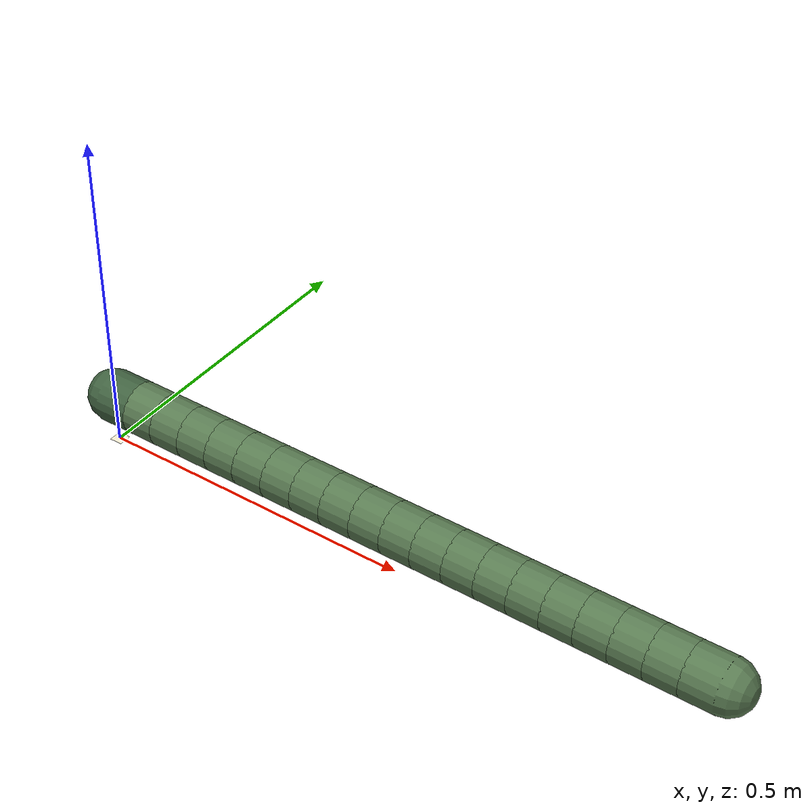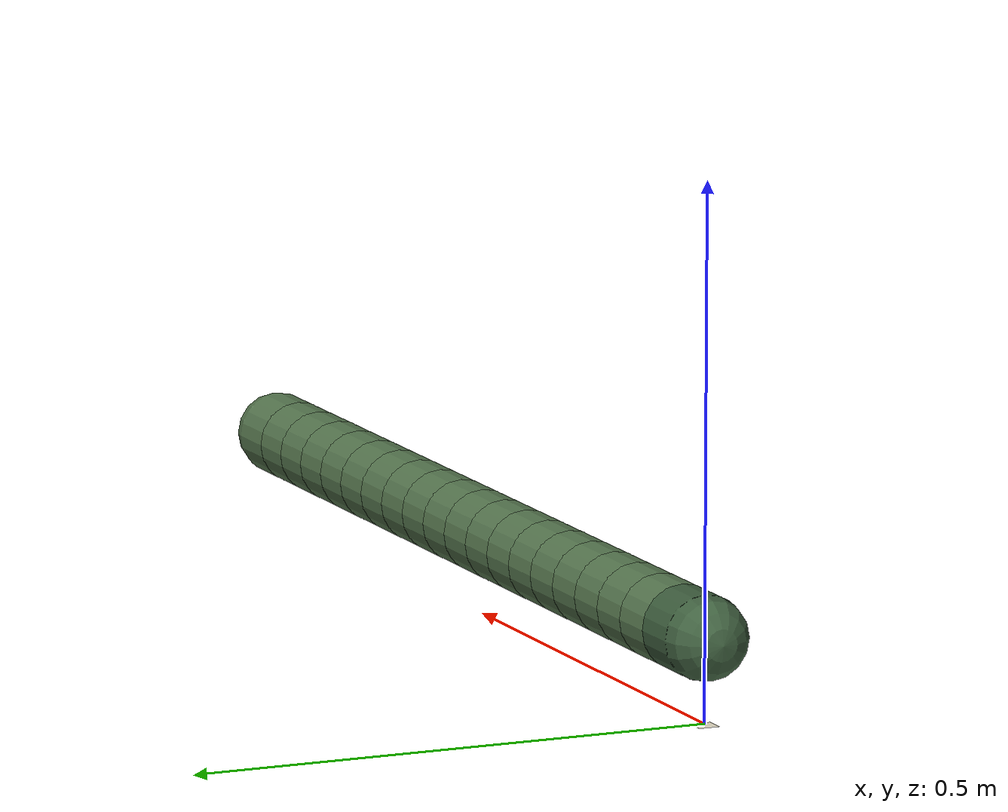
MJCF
<!-- Generated by scripts/build_wormbody.py. Edit the script, not this file. -->
<mujoco model="c_elegans_wormbody">
  <compiler angle="radian" autolimits="true"/>
  <option timestep="0.0005" integrator="implicitfast" viscosity="1.0e-3" density="1000"/>
  <visual>
    <headlight diffuse="0.8 0.8 0.8" ambient="0.3 0.3 0.3" specular="0.2 0.2 0.2"/>
    <global offwidth="1200" offheight="800"/>
  </visual>
  <default>
    <joint damping="0.5" stiffness="0.0" limited="true" range="-0.5 0.5"/>
    <geom density="1000" friction="0.5 0.1 0.01"/>
    <position ctrllimited="true" ctrlrange="-0.5 0.5" kp="60.0" kv="2.0"/>
  </default>
  <worldbody>
    <geom name="substrate" type="plane" size="0.01 0.01 0.001" rgba="0.95 0.92 0.82 1"/>
    <light name="overhead" pos="0 0 0.02" dir="0 0 -1" diffuse="0.8 0.8 0.8"/>
    <body name="segment_0" pos="0 0 0.0800000" euler="0 0 0">
      <freejoint name="root"/>
      <geom name="geom_0" type="capsule" fromto="0 0 0 0.0500000 0 0" size="0.0400000" rgba="0.25 0.38 0.25 1"/>
        <body name="segment_1" pos="0.0500000 0 0">
          <joint name="hinge_1" type="hinge" axis="0 0 1"/>
          <geom name="geom_1" type="capsule" fromto="0 0 0 0.0500000 0 0" size="0.0400000" rgba="0.35 0.48 0.32 1"/>
          <body name="segment_2" pos="0.0500000 0 0">
            <joint name="hinge_2" type="hinge" axis="0 0 1"/>
            <geom name="geom_2" type="capsule" fromto="0 0 0 0.0500000 0 0" size="0.0400000" rgba="0.35 0.48 0.32 1"/>
            <body name="segment_3" pos="0.0500000 0 0">
              <joint name="hinge_3" type="hinge" axis="0 0 1"/>
              <geom name="geom_3" type="capsule" fromto="0 0 0 0.0500000 0 0" size="0.0400000" rgba="0.35 0.48 0.32 1"/>
              <body name="segment_4" pos="0.0500000 0 0">
                <joint name="hinge_4" type="hinge" axis="0 0 1"/>
                <geom name="geom_4" type="capsule" fromto="0 0 0 0.0500000 0 0" size="0.0400000" rgba="0.35 0.48 0.32 1"/>
                <body name="segment_5" pos="0.0500000 0 0">
                  <joint name="hinge_5" type="hinge" axis="0 0 1"/>
                  <geom name="geom_5" type="capsule" fromto="0 0 0 0.0500000 0 0" size="0.0400000" rgba="0.35 0.48 0.32 1"/>
                  <body name="segment_6" pos="0.0500000 0 0">
                    <joint name="hinge_6" type="hinge" axis="0 0 1"/>
                    <geom name="geom_6" type="capsule" fromto="0 0 0 0.0500000 0 0" size="0.0400000" rgba="0.35 0.48 0.32 1"/>
                    <body name="segment_7" pos="0.0500000 0 0">
                      <joint name="hinge_7" type="hinge" axis="0 0 1"/>
                      <geom name="geom_7" type="capsule" fromto="0 0 0 0.0500000 0 0" size="0.0400000" rgba="0.35 0.48 0.32 1"/>
                      <body name="segment_8" pos="0.0500000 0 0">
                        <joint name="hinge_8" type="hinge" axis="0 0 1"/>
                        <geom name="geom_8" type="capsule" fromto="0 0 0 0.0500000 0 0" size="0.0400000" rgba="0.35 0.48 0.32 1"/>
                        <body name="segment_9" pos="0.0500000 0 0">
                          <joint name="hinge_9" type="hinge" axis="0 0 1"/>
                          <geom name="geom_9" type="capsule" fromto="0 0 0 0.0500000 0 0" size="0.0400000" rgba="0.35 0.48 0.32 1"/>
                          <body name="segment_10" pos="0.0500000 0 0">
                            <joint name="hinge_10" type="hinge" axis="0 0 1"/>
                            <geom name="geom_10" type="capsule" fromto="0 0 0 0.0500000 0 0" size="0.0400000" rgba="0.35 0.48 0.32 1"/>
                            <body name="segment_11" pos="0.0500000 0 0">
                              <joint name="hinge_11" type="hinge" axis="0 0 1"/>
                              <geom name="geom_11" type="capsule" fromto="0 0 0 0.0500000 0 0" size="0.0400000" rgba="0.35 0.48 0.32 1"/>
                              <body name="segment_12" pos="0.0500000 0 0">
                                <joint name="hinge_12" type="hinge" axis="0 0 1"/>
                                <geom name="geom_12" type="capsule" fromto="0 0 0 0.0500000 0 0" size="0.0400000" rgba="0.35 0.48 0.32 1"/>
                                <body name="segment_13" pos="0.0500000 0 0">
                                  <joint name="hinge_13" type="hinge" axis="0 0 1"/>
                                  <geom name="geom_13" type="capsule" fromto="0 0 0 0.0500000 0 0" size="0.0400000" rgba="0.35 0.48 0.32 1"/>
                                  <body name="segment_14" pos="0.0500000 0 0">
                                    <joint name="hinge_14" type="hinge" axis="0 0 1"/>
                                    <geom name="geom_14" type="capsule" fromto="0 0 0 0.0500000 0 0" size="0.0400000" rgba="0.35 0.48 0.32 1"/>
                                    <body name="segment_15" pos="0.0500000 0 0">
                                      <joint name="hinge_15" type="hinge" axis="0 0 1"/>
                                      <geom name="geom_15" type="capsule" fromto="0 0 0 0.0500000 0 0" size="0.0400000" rgba="0.35 0.48 0.32 1"/>
                                      <body name="segment_16" pos="0.0500000 0 0">
                                        <joint name="hinge_16" type="hinge" axis="0 0 1"/>
                                        <geom name="geom_16" type="capsule" fromto="0 0 0 0.0500000 0 0" size="0.0400000" rgba="0.35 0.48 0.32 1"/>
                                        <body name="segment_17" pos="0.0500000 0 0">
                                          <joint name="hinge_17" type="hinge" axis="0 0 1"/>
                                          <geom name="geom_17" type="capsule" fromto="0 0 0 0.0500000 0 0" size="0.0400000" rgba="0.35 0.48 0.32 1"/>
                                          <body name="segment_18" pos="0.0500000 0 0">
                                            <joint name="hinge_18" type="hinge" axis="0 0 1"/>
                                            <geom name="geom_18" type="capsule" fromto="0 0 0 0.0500000 0 0" size="0.0400000" rgba="0.35 0.48 0.32 1"/>
                                            <body name="segment_19" pos="0.0500000 0 0">
                                              <joint name="hinge_19" type="hinge" axis="0 0 1"/>
                                              <geom name="geom_19" type="capsule" fromto="0 0 0 0.0500000 0 0" size="0.0400000" rgba="0.35 0.48 0.32 1"/>
                                            </body>
                                          </body>
                                        </body>
                                      </body>
                                    </body>
                                  </body>
                                </body>
                              </body>
                            </body>
                          </body>
                        </body>
                      </body>
                    </body>
                  </body>
                </body>
              </body>
            </body>
          </body>
        </body>
      </body>
  </worldbody>
  <actuator>
    <position name="muscle_1" joint="hinge_1"/>
    <position name="muscle_2" joint="hinge_2"/>
    <position name="muscle_3" joint="hinge_3"/>
    <position name="muscle_4" joint="hinge_4"/>
    <position name="muscle_5" joint="hinge_5"/>
    <position name="muscle_6" joint="hinge_6"/>
    <position name="muscle_7" joint="hinge_7"/>
    <position name="muscle_8" joint="hinge_8"/>
    <position name="muscle_9" joint="hinge_9"/>
    <position name="muscle_10" joint="hinge_10"/>
    <position name="muscle_11" joint="hinge_11"/>
    <position name="muscle_12" joint="hinge_12"/>
    <position name="muscle_13" joint="hinge_13"/>
    <position name="muscle_14" joint="hinge_14"/>
    <position name="muscle_15" joint="hinge_15"/>
    <position name="muscle_16" joint="hinge_16"/>
    <position name="muscle_17" joint="hinge_17"/>
    <position name="muscle_18" joint="hinge_18"/>
    <position name="muscle_19" joint="hinge_19"/>
  </actuator>
  <sensor>
    <framepos name="pos_segment_0" objtype="body" objname="segment_0"/>
    <framepos name="pos_segment_1" objtype="body" objname="segment_1"/>
    <framepos name="pos_segment_2" objtype="body" objname="segment_2"/>
    <framepos name="pos_segment_3" objtype="body" objname="segment_3"/>
    <framepos name="pos_segment_4" objtype="body" objname="segment_4"/>
    <framepos name="pos_segment_5" objtype="body" objname="segment_5"/>
    <framepos name="pos_segment_6" objtype="body" objname="segment_6"/>
    <framepos name="pos_segment_7" objtype="body" objname="segment_7"/>
    <framepos name="pos_segment_8" objtype="body" objname="segment_8"/>
    <framepos name="pos_segment_9" objtype="body" objname="segment_9"/>
    <framepos name="pos_segment_10" objtype="body" objname="segment_10"/>
    <framepos name="pos_segment_11" objtype="body" objname="segment_11"/>
    <framepos name="pos_segment_12" objtype="body" objname="segment_12"/>
    <framepos name="pos_segment_13" objtype="body" objname="segment_13"/>
    <framepos name="pos_segment_14" objtype="body" objname="segment_14"/>
    <framepos name="pos_segment_15" objtype="body" objname="segment_15"/>
    <framepos name="pos_segment_16" objtype="body" objname="segment_16"/>
    <framepos name="pos_segment_17" objtype="body" objname="segment_17"/>
    <framepos name="pos_segment_18" objtype="body" objname="segment_18"/>
    <framepos name="pos_segment_19" objtype="body" objname="segment_19"/>
  </sensor>
</mujoco>
